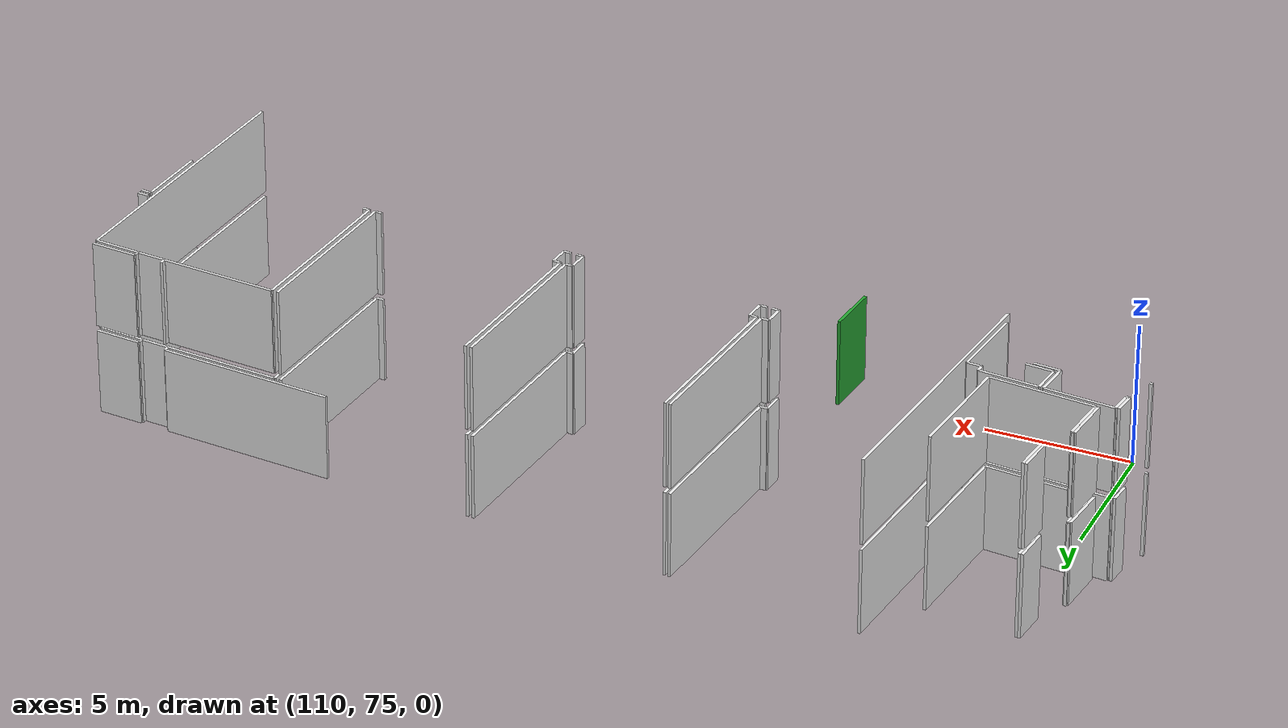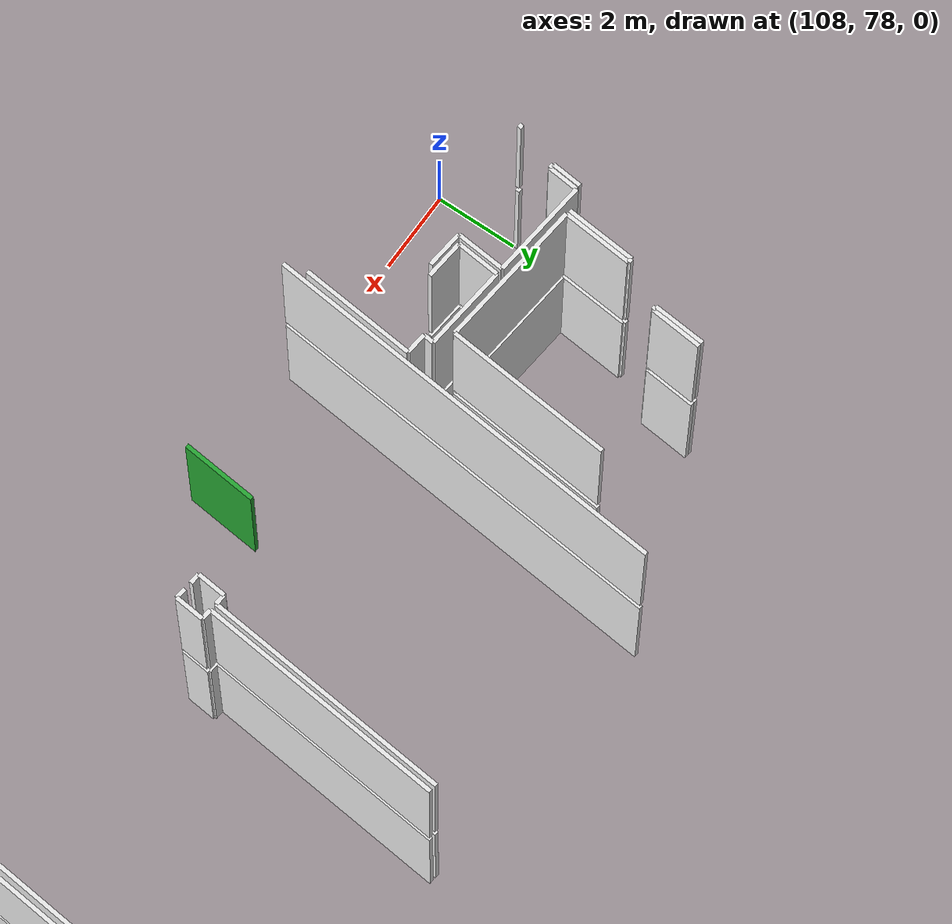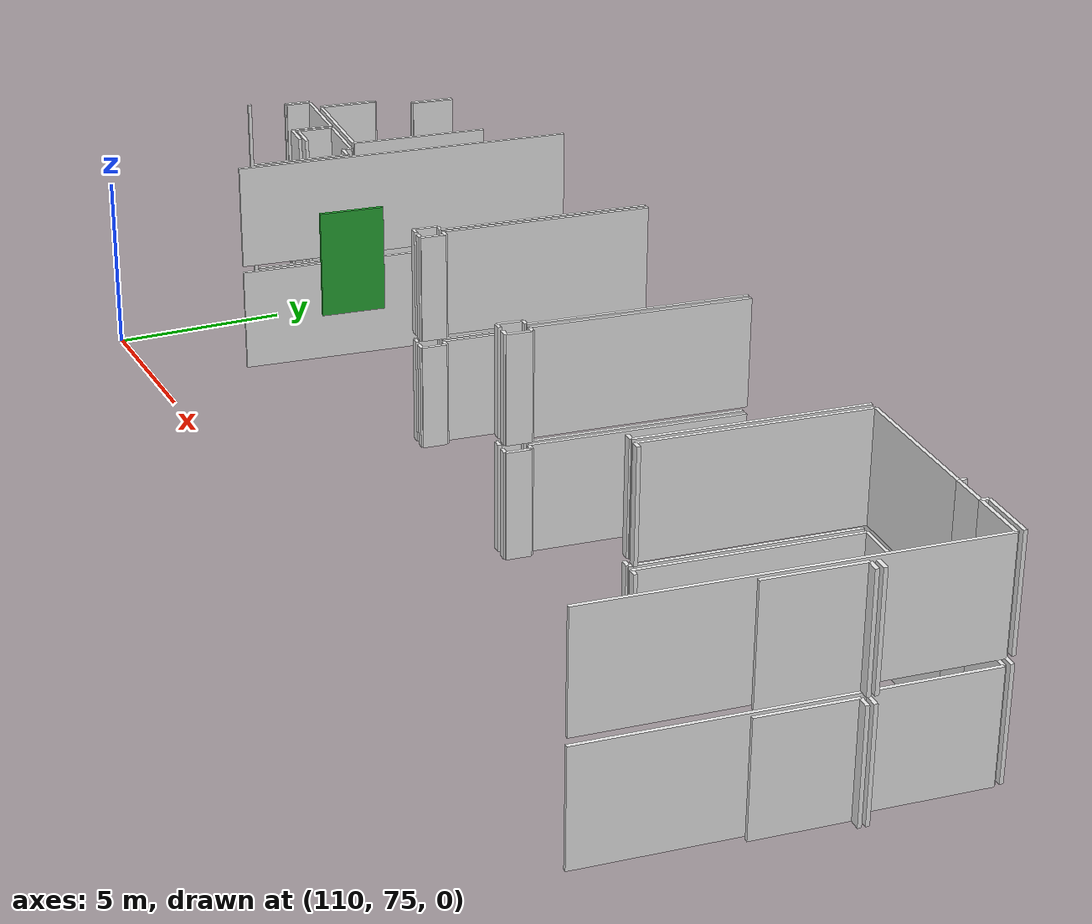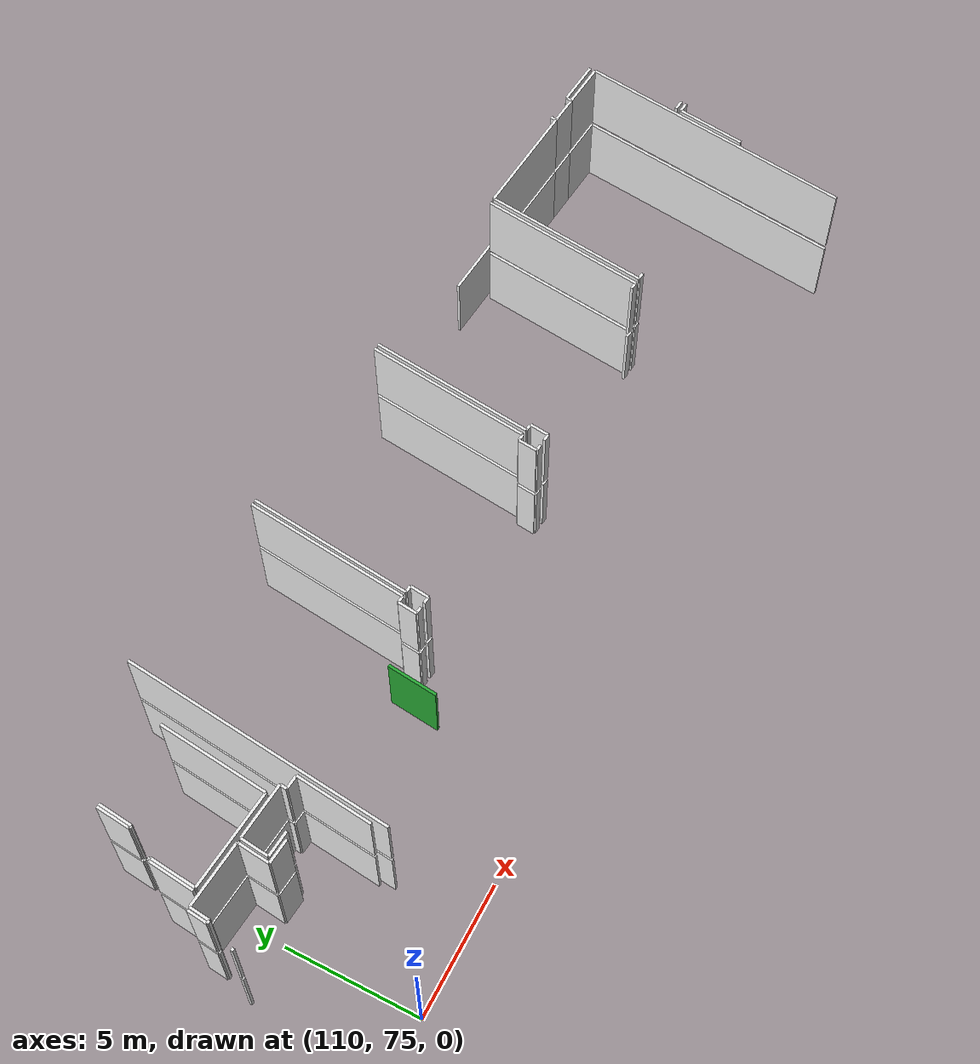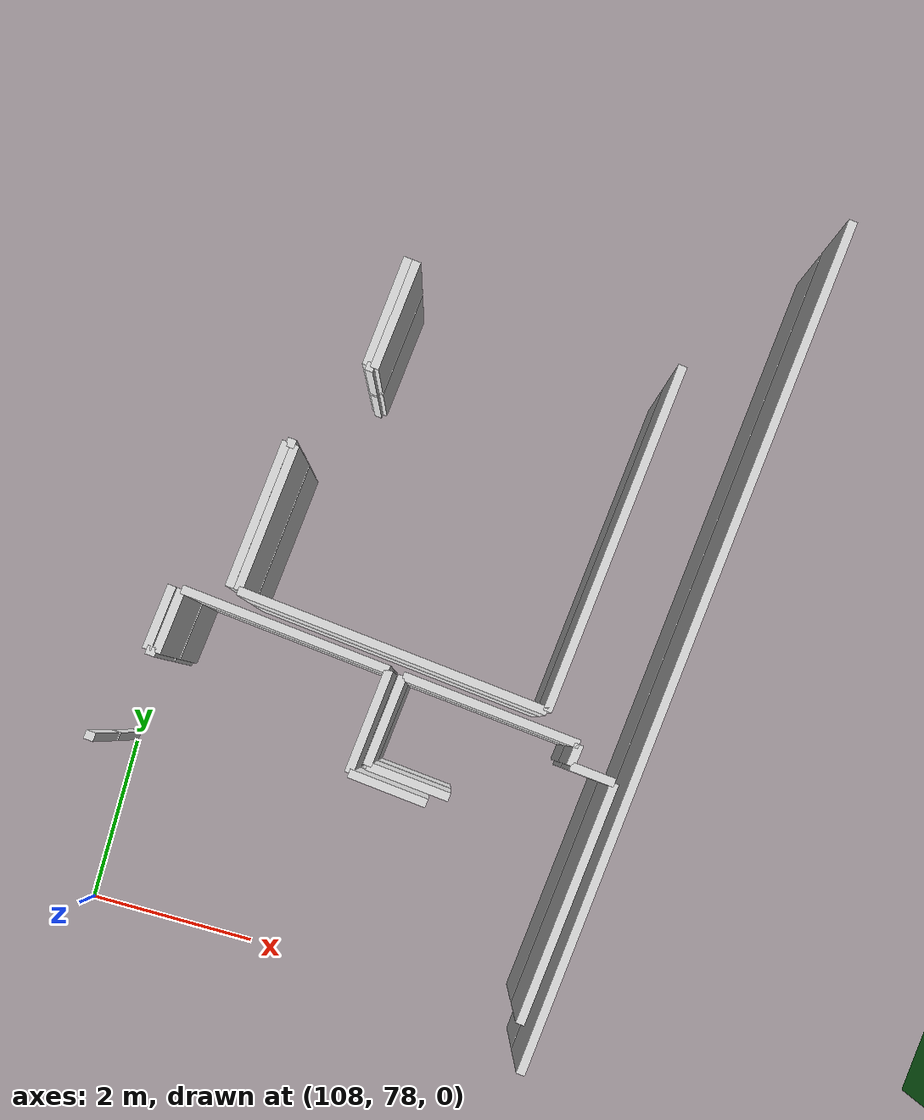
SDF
<sdf version="1.6">
 <world name="default">
  <model name="wall_134.6_79.7_0.0">
   <static>true</static>
   <pose>134.60999999998603 79.67999999993481 1.5 0 0 3.0584514216210654</pose>
   <link name="link">
    <visual name="visual">
     <geometry><box><size>0.2408318915681117 0.1 3</size></box></geometry>
     <material>
      <script><uri>file://media/materials/scripts/gazebo.material</uri><name>Gazebo/White</name></script>
     </material>
    </visual>
   </link>
  </model>
  <model name="wall_134.8_82.6_0.0">
   <static>true</static>
   <pose>134.79000000000815 82.63500000000931 1.5 0 0 1.4692789369105257</pose>
   <link name="link">
    <visual name="visual">
     <geometry><box><size>5.920481399479087 0.1 3</size></box></geometry>
     <material>
      <script><uri>file://media/materials/scripts/gazebo.material</uri><name>Gazebo/White</name></script>
     </material>
    </visual>
   </link>
  </model>
  <model name="wall_137.1_85.4_0.0">
   <static>true</static>
   <pose>137.07000000000698 85.38000000012107 1.5 0 0 -0.10066865213548881</pose>
   <link name="link">
    <visual name="visual">
     <geometry><box><size>3.9801507508674154 0.1 3</size></box></geometry>
     <material>
      <script><uri>file://media/materials/scripts/gazebo.material</uri><name>Gazebo/White</name></script>
     </material>
    </visual>
   </link>
  </model>
  <model name="wall_139.5_85.1_0.0">
   <static>true</static>
   <pose>139.54999999998836 85.13000000012107 1.5 0 0 -0.09966865258337218</pose>
   <link name="link">
    <visual name="visual">
     <geometry><box><size>1.004987562121356 0.1 3</size></box></geometry>
     <material>
      <script><uri>file://media/materials/scripts/gazebo.material</uri><name>Gazebo/White</name></script>
     </material>
    </visual>
   </link>
  </model>
  <model name="wall_140.8_85.0_0.0">
   <static>true</static>
   <pose>140.82499999998254 85.0 1.5 0 0 -0.10286148975795871</pose>
   <link name="link">
    <visual name="visual">
     <geometry><box><size>1.5582361823586293 0.1 3</size></box></geometry>
     <material>
      <script><uri>file://media/materials/scripts/gazebo.material</uri><name>Gazebo/White</name></script>
     </material>
    </visual>
   </link>
  </model>
  <model name="wall_141.1_80.0_0.0">
   <static>true</static>
   <pose>141.10499999998137 79.98999999999069 1.5 0 0 -1.670866626016522</pose>
   <link name="link">
    <visual name="visual">
     <geometry><box><size>9.909576176477497 0.1 3</size></box></geometry>
     <material>
      <script><uri>file://media/materials/scripts/gazebo.material</uri><name>Gazebo/White</name></script>
     </material>
    </visual>
   </link>
  </model>
  <model name="wall_134.2_79.7_0.0">
   <static>true</static>
   <pose>134.15500000002794 79.72500000009313 1.5 0 0 -0.11942892704661259</pose>
   <link name="link">
    <visual name="visual">
     <geometry><box><size>0.25179356627135296 0.1 3</size></box></geometry>
     <material>
      <script><uri>file://media/materials/scripts/gazebo.material</uri><name>Gazebo/White</name></script>
     </material>
    </visual>
   </link>
  </model>
  <model name="wall_134.6_82.7_0.0">
   <static>true</static>
   <pose>134.5800000000163 82.65999999991618 1.5 0 0 1.4694498235315459</pose>
   <link name="link">
    <visual name="visual">
     <geometry><box><size>5.9304300011780855 0.1 3</size></box></geometry>
     <material>
      <script><uri>file://media/materials/scripts/gazebo.material</uri><name>Gazebo/White</name></script>
     </material>
    </visual>
   </link>
  </model>
  <model name="wall_127.8_83.3_0.0">
   <static>true</static>
   <pose>127.79999999998836 83.34499999997206 1.5 0 0 -1.6719725158339418</pose>
   <link name="link">
    <visual name="visual">
     <geometry><box><size>5.940378775484714 0.1 3</size></box></geometry>
     <material>
      <script><uri>file://media/materials/scripts/gazebo.material</uri><name>Gazebo/White</name></script>
     </material>
    </visual>
   </link>
  </model>
  <model name="wall_127.6_80.4_0.0">
   <static>true</static>
   <pose>127.625 80.375 1.5 0 0 -0.11942892704661259</pose>
   <link name="link">
    <visual name="visual">
     <geometry><box><size>0.25179356627135296 0.1 3</size></box></geometry>
     <material>
      <script><uri>file://media/materials/scripts/gazebo.material</uri><name>Gazebo/White</name></script>
     </material>
    </visual>
   </link>
  </model>
  <model name="wall_127.7_80.0_0.0">
   <static>true</static>
   <pose>127.71499999999651 80.01499999989755 1.5 0 0 -1.6718996985493473</pose>
   <link name="link">
    <visual name="visual">
     <geometry><box><size>0.693541635321099 0.1 3</size></box></geometry>
     <material>
      <script><uri>file://media/materials/scripts/gazebo.material</uri><name>Gazebo/White</name></script>
     </material>
    </visual>
   </link>
  </model>
  <model name="wall_127.6_79.7_0.0">
   <static>true</static>
   <pose>127.55499999999302 79.68500000005588 1.5 0 0 3.0221637265431807</pose>
   <link name="link">
    <visual name="visual">
     <geometry><box><size>0.25179356627135296 0.1 3</size></box></geometry>
     <material>
      <script><uri>file://media/materials/scripts/gazebo.material</uri><name>Gazebo/White</name></script>
     </material>
    </visual>
   </link>
  </model>
  <model name="wall_113.4_79.7_0.0">
   <static>true</static>
   <pose>113.40499999999884 79.70999999996275 1.5 0 0 1.4668557173961834</pose>
   <link name="link">
    <visual name="visual">
     <geometry><box><size>2.7950849721319257 0.1 3</size></box></geometry>
     <material>
      <script><uri>file://media/materials/scripts/gazebo.material</uri><name>Gazebo/White</name></script>
     </material>
    </visual>
   </link>
  </model>
  <model name="wall_113.3_81.1_0.0">
   <static>true</static>
   <pose>113.2949999999837 81.125 1.5 0 0 3.0438657465945953</pose>
   <link name="link">
    <visual name="visual">
     <geometry><box><size>0.512445119003853 0.1 3</size></box></geometry>
     <material>
      <script><uri>file://media/materials/scripts/gazebo.material</uri><name>Gazebo/White</name></script>
     </material>
    </visual>
   </link>
  </model>
  <model name="wall_113.1_81.3_0.0">
   <static>true</static>
   <pose>113.05499999999302 81.27499999990687 1.5 0 0 1.451367400666386</pose>
   <link name="link">
    <visual name="visual">
     <geometry><box><size>0.2517935662436123 0.1 3</size></box></geometry>
     <material>
      <script><uri>file://media/materials/scripts/gazebo.material</uri><name>Gazebo/White</name></script>
     </material>
    </visual>
   </link>
  </model>
  <model name="wall_112.1_81.5_0.0">
   <static>true</static>
   <pose>112.05000000001746 81.5 1.5 0 0 3.04386574613964</pose>
   <link name="link">
    <visual name="visual">
     <geometry><box><size>2.0497804760483525 0.1 3</size></box></geometry>
     <material>
      <script><uri>file://media/materials/scripts/gazebo.material</uri><name>Gazebo/White</name></script>
     </material>
    </visual>
   </link>
  </model>
  <model name="wall_111.0_81.1_0.0">
   <static>true</static>
   <pose>110.97500000000582 81.0800000000745 1.5 0 0 -1.676173766022158</pose>
   <link name="link">
    <visual name="visual">
     <geometry><box><size>1.0458011283639057 0.1 3</size></box></geometry>
     <material>
      <script><uri>file://media/materials/scripts/gazebo.material</uri><name>Gazebo/White</name></script>
     </material>
    </visual>
   </link>
  </model>
  <model name="wall_111.4_80.5_0.0">
   <static>true</static>
   <pose>111.39499999998952 80.51500000013039 1.5 0 0 -0.09445493523843698</pose>
   <link name="link">
    <visual name="visual">
     <geometry><box><size>0.9542536350443193 0.1 3</size></box></geometry>
     <material>
      <script><uri>file://media/materials/scripts/gazebo.material</uri><name>Gazebo/White</name></script>
     </material>
    </visual>
   </link>
  </model>
  <model name="wall_109.7_81.7_0.0">
   <static>true</static>
   <pose>109.6699999999837 81.73999999999069 1.5 0 0 3.041924001199486</pose>
   <link name="link">
    <visual name="visual">
     <geometry><box><size>2.411970149068087 0.1 3</size></box></geometry>
     <material>
      <script><uri>file://media/materials/scripts/gazebo.material</uri><name>Gazebo/White</name></script>
     </material>
    </visual>
   </link>
  </model>
  <model name="wall_108.4_81.5_0.0">
   <static>true</static>
   <pose>108.42999999999302 81.48999999999069 1.5 0 0 -1.6784861976067038</pose>
   <link name="link">
    <visual name="visual">
     <geometry><box><size>0.7443117623918901 0.1 3</size></box></geometry>
     <material>
      <script><uri>file://media/materials/scripts/gazebo.material</uri><name>Gazebo/White</name></script>
     </material>
    </visual>
   </link>
  </model>
  <model name="wall_108.3_81.1_0.0">
   <static>true</static>
   <pose>108.33500000002095 81.125 1.5 0 0 3.0509327683929186</pose>
   <link name="link">
    <visual name="visual">
     <geometry><box><size>0.11045361013772383 0.1 3</size></box></geometry>
     <material>
      <script><uri>file://media/materials/scripts/gazebo.material</uri><name>Gazebo/White</name></script>
     </material>
    </visual>
   </link>
  </model>
  <model name="wall_108.3_81.5_0.0">
   <static>true</static>
   <pose>108.32000000000698 81.5 1.5 0 0 1.463106456050333</pose>
   <link name="link">
    <visual name="visual">
     <geometry><box><size>0.7443117628548539 0.1 3</size></box></geometry>
     <material>
      <script><uri>file://media/materials/scripts/gazebo.material</uri><name>Gazebo/White</name></script>
     </material>
    </visual>
   </link>
  </model>
  <model name="wall_107.9_80.1_0.0">
   <static>true</static>
   <pose>107.94500000000698 80.06499999994412 1.5 0 0 -0.09065988519687482</pose>
   <link name="link">
    <visual name="visual">
     <geometry><box><size>0.11045361013772383 0.1 3</size></box></geometry>
     <material>
      <script><uri>file://media/materials/scripts/gazebo.material</uri><name>Gazebo/White</name></script>
     </material>
    </visual>
   </link>
  </model>
  <model name="wall_111.2_80.4_0.0">
   <static>true</static>
   <pose>111.20000000001164 80.38500000000931 1.5 0 0 3.041924000752843</pose>
   <link name="link">
    <visual name="visual">
     <geometry><box><size>0.9044888059555555 0.1 3</size></box></geometry>
     <material>
      <script><uri>file://media/materials/scripts/gazebo.material</uri><name>Gazebo/White</name></script>
     </material>
    </visual>
   </link>
  </model>
  <model name="wall_110.8_81.0_0.0">
   <static>true</static>
   <pose>110.80999999999767 81.0250000001397 1.5 0 0 1.470295727739453</pose>
   <link name="link">
    <visual name="visual">
     <geometry><box><size>1.1960351164852516 0.1 3</size></box></geometry>
     <material>
      <script><uri>file://media/materials/scripts/gazebo.material</uri><name>Gazebo/White</name></script>
     </material>
    </visual>
   </link>
  </model>
  <model name="wall_109.8_85.4_0.0">
   <static>true</static>
   <pose>109.79999999998836 85.36500000022352 1.5 0 0 -1.666503034878009</pose>
   <link name="link">
    <visual name="visual">
     <geometry><box><size>1.2557467897625232 0.1 3</size></box></geometry>
     <material>
      <script><uri>file://media/materials/scripts/gazebo.material</uri><name>Gazebo/White</name></script>
     </material>
    </visual>
   </link>
  </model>
  <model name="wall_109.8_84.7_0.0">
   <static>true</static>
   <pose>109.78500000000349 84.73500000010245 1.5 0 0 -0.11065722380033888</pose>
   <link name="link">
    <visual name="visual">
     <geometry><box><size>0.0905538514335692 0.1 3</size></box></geometry>
     <material>
      <script><uri>file://media/materials/scripts/gazebo.material</uri><name>Gazebo/White</name></script>
     </material>
    </visual>
   </link>
  </model>
  <model name="wall_109.9_85.4_0.0">
   <static>true</static>
   <pose>109.89500000001863 85.35499999998137 1.5 0 0 1.4671688667943394</pose>
   <link name="link">
    <visual name="visual">
     <geometry><box><size>1.2567418191503021 0.1 3</size></box></geometry>
     <material>
      <script><uri>file://media/materials/scripts/gazebo.material</uri><name>Gazebo/White</name></script>
     </material>
    </visual>
   </link>
  </model>
  <model name="wall_112.8_83.7_0.0">
   <static>true</static>
   <pose>112.84500000000116 83.65500000002794 1.5 0 0 -1.6726866492791923</pose>
   <link name="link">
    <visual name="visual">
     <geometry><box><size>4.0309056056823005 0.1 3</size></box></geometry>
     <material>
      <script><uri>file://media/materials/scripts/gazebo.material</uri><name>Gazebo/White</name></script>
     </material>
    </visual>
   </link>
  </model>
  <model name="wall_110.9_81.8_0.0">
   <static>true</static>
   <pose>110.85000000000582 81.82999999984168 1.5 0 0 3.041370903846408</pose>
   <link name="link">
    <visual name="visual">
     <geometry><box><size>3.5980550301548777 0.1 3</size></box></geometry>
     <material>
      <script><uri>file://media/materials/scripts/gazebo.material</uri><name>Gazebo/White</name></script>
     </material>
    </visual>
   </link>
  </model>
  <model name="wall_109.1_82.9_0.0">
   <static>true</static>
   <pose>109.14499999998952 82.85499999998137 1.5 0 0 1.470541851323015</pose>
   <link name="link">
    <visual name="visual">
     <geometry><box><size>1.698528775552396 0.1 3</size></box></geometry>
     <material>
      <script><uri>file://media/materials/scripts/gazebo.material</uri><name>Gazebo/White</name></script>
     </material>
    </visual>
   </link>
  </model>
  <model name="wall_109.2_83.7_0.0">
   <static>true</static>
   <pose>109.17999999999302 83.7050000000745 1.5 0 0 3.0419240032886226</pose>
   <link name="link">
    <visual name="visual">
     <geometry><box><size>0.10049875616580058 0.1 3</size></box></geometry>
     <material>
      <script><uri>file://media/materials/scripts/gazebo.material</uri><name>Gazebo/White</name></script>
     </material>
    </visual>
   </link>
  </model>
  <model name="wall_109.0_82.9_0.0">
   <static>true</static>
   <pose>109.0450000000128 82.86499999999069 1.5 0 0 -1.6710508022942177</pose>
   <link name="link">
    <visual name="visual">
     <geometry><box><size>1.698528775089073 0.1 3</size></box></geometry>
     <material>
      <script><uri>file://media/materials/scripts/gazebo.material</uri><name>Gazebo/White</name></script>
     </material>
    </visual>
   </link>
  </model>
  <model name="wall_127.1_79.7_0.0">
   <static>true</static>
   <pose>127.10999999998603 79.7300000002142 1.5 0 0 3.0584514216210654</pose>
   <link name="link">
    <visual name="visual">
     <geometry><box><size>0.2408318915681117 0.1 3</size></box></geometry>
     <material>
      <script><uri>file://media/materials/scripts/gazebo.material</uri><name>Gazebo/White</name></script>
     </material>
    </visual>
   </link>
  </model>
  <model name="wall_127.0_80.1_0.0">
   <static>true</static>
   <pose>127.02499999999418 80.08500000019558 1.5 0 0 1.469692955040446</pose>
   <link name="link">
    <visual name="visual">
     <geometry><box><size>0.693541635321099 0.1 3</size></box></geometry>
     <material>
      <script><uri>file://media/materials/scripts/gazebo.material</uri><name>Gazebo/White</name></script>
     </material>
    </visual>
   </link>
  </model>
  <model name="wall_127.2_80.4_0.0">
   <static>true</static>
   <pose>127.17999999999302 80.42000000015832 1.5 0 0 -0.08314123196872766</pose>
   <link name="link">
    <visual name="visual">
     <geometry><box><size>0.2408318915681117 0.1 3</size></box></geometry>
     <material>
      <script><uri>file://media/materials/scripts/gazebo.material</uri><name>Gazebo/White</name></script>
     </material>
    </visual>
   </link>
  </model>
  <model name="wall_127.6_83.4_0.0">
   <static>true</static>
   <pose>127.60000000000582 83.36499999999069 1.5 0 0 1.469620137746103</pose>
   <link name="link">
    <visual name="visual">
     <geometry><box><size>5.940378775490593 0.1 3</size></box></geometry>
     <material>
      <script><uri>file://media/materials/scripts/gazebo.material</uri><name>Gazebo/White</name></script>
     </material>
    </visual>
   </link>
  </model>
  <model name="wall_120.8_84.0_0.0">
   <static>true</static>
   <pose>120.82000000000698 84.0449999999255 1.5 0 0 -1.6719725158260241</pose>
   <link name="link">
    <visual name="visual">
     <geometry><box><size>5.940378775947993 0.1 3</size></box></geometry>
     <material>
      <script><uri>file://media/materials/scripts/gazebo.material</uri><name>Gazebo/White</name></script>
     </material>
    </visual>
   </link>
  </model>
  <model name="wall_120.6_81.1_0.0">
   <static>true</static>
   <pose>120.64500000001863 81.07999999984168 1.5 0 0 -0.07982998578626932</pose>
   <link name="link">
    <visual name="visual">
     <geometry><box><size>0.25079872408117443 0.1 3</size></box></geometry>
     <material>
      <script><uri>file://media/materials/scripts/gazebo.material</uri><name>Gazebo/White</name></script>
     </material>
    </visual>
   </link>
  </model>
  <model name="wall_120.7_80.7_0.0">
   <static>true</static>
   <pose>120.73500000001513 80.71999999997206 1.5 0 0 -1.670464979335457</pose>
   <link name="link">
    <visual name="visual">
     <geometry><box><size>0.7034912932011471 0.1 3</size></box></geometry>
     <material>
      <script><uri>file://media/materials/scripts/gazebo.material</uri><name>Gazebo/White</name></script>
     </material>
    </visual>
   </link>
  </model>
  <model name="wall_120.6_80.4_0.0">
   <static>true</static>
   <pose>120.57500000001164 80.38500000000931 1.5 0 0 3.0221637283793843</pose>
   <link name="link">
    <visual name="visual">
     <geometry><box><size>0.2517935662158716 0.1 3</size></box></geometry>
     <material>
      <script><uri>file://media/materials/scripts/gazebo.material</uri><name>Gazebo/White</name></script>
     </material>
    </visual>
   </link>
  </model>
  <model name="wall_120.2_80.4_0.0">
   <static>true</static>
   <pose>120.15500000002794 80.42999999993481 1.5 0 0 3.061762667803524</pose>
   <link name="link">
    <visual name="visual">
     <geometry><box><size>0.25079872408117443 0.1 3</size></box></geometry>
     <material>
      <script><uri>file://media/materials/scripts/gazebo.material</uri><name>Gazebo/White</name></script>
     </material>
    </visual>
   </link>
  </model>
  <model name="wall_120.1_80.8_0.0">
   <static>true</static>
   <pose>120.06500000000233 80.78499999991618 1.5 0 0 1.4696929551239455</pose>
   <link name="link">
    <visual name="visual">
     <geometry><box><size>0.6935416353152241 0.1 3</size></box></geometry>
     <material>
      <script><uri>file://media/materials/scripts/gazebo.material</uri><name>Gazebo/White</name></script>
     </material>
    </visual>
   </link>
  </model>
  <model name="wall_120.2_81.1_0.0">
   <static>true</static>
   <pose>120.22499999997672 81.11999999987893 1.5 0 0 -0.07982998578626932</pose>
   <link name="link">
    <visual name="visual">
     <geometry><box><size>0.25079872408117443 0.1 3</size></box></geometry>
     <material>
      <script><uri>file://media/materials/scripts/gazebo.material</uri><name>Gazebo/White</name></script>
     </material>
    </visual>
   </link>
  </model>
  <model name="wall_120.6_84.1_0.0">
   <static>true</static>
   <pose>120.64999999999418 84.06499999994412 1.5 0 0 1.4696201377540206</pose>
   <link name="link">
    <visual name="visual">
     <geometry><box><size>5.940378775953872 0.1 3</size></box></geometry>
     <material>
      <script><uri>file://media/materials/scripts/gazebo.material</uri><name>Gazebo/White</name></script>
     </material>
    </visual>
   </link>
  </model>
  <model name="wall_113.9_82.7_0.0">
   <static>true</static>
   <pose>113.90999999997439 82.73999999999069 1.5 0 0 -1.6716673835126197</pose>
   <link name="link">
    <visual name="visual">
     <geometry><box><size>9.93047833727022 0.1 3</size></box></geometry>
     <material>
      <script><uri>file://media/materials/scripts/gazebo.material</uri><name>Gazebo/White</name></script>
     </material>
    </visual>
   </link>
  </model>
  <model name="wall_141.6_81.4_0.0">
   <static>true</static>
   <pose>141.63000000000466 81.43000000016764 1.5 0 0 3.0244839089037323</pose>
   <link name="link">
    <visual name="visual">
     <geometry><box><size>0.3423448553444534 0.1 3</size></box></geometry>
     <material>
      <script><uri>file://media/materials/scripts/gazebo.material</uri><name>Gazebo/White</name></script>
     </material>
    </visual>
   </link>
  </model>
  <model name="wall_141.3_80.2_0.0">
   <static>true</static>
   <pose>141.33500000002095 80.22500000009313 1.5 0 0 -1.6724851785502959</pose>
   <link name="link">
    <visual name="visual">
     <geometry><box><size>2.4627220713902527 0.1 3</size></box></geometry>
     <material>
      <script><uri>file://media/materials/scripts/gazebo.material</uri><name>Gazebo/White</name></script>
     </material>
    </visual>
   </link>
  </model>
  <model name="wall_141.6_81.6_0.0">
   <static>true</static>
   <pose>141.64000000001397 81.62000000011176 1.5 0 0 -0.11065722128037307</pose>
   <link name="link">
    <visual name="visual">
     <geometry><box><size>0.3622154055157262 0.1 3</size></box></geometry>
     <material>
      <script><uri>file://media/materials/scripts/gazebo.material</uri><name>Gazebo/White</name></script>
     </material>
    </visual>
   </link>
  </model>
  <model name="wall_136.1_85.7_0.0">
   <static>true</static>
   <pose>136.08499999999185 85.67999999993481 1.5 0 0 -0.1001661649028647</pose>
   <link name="link">
    <visual name="visual">
     <geometry><box><size>6.0000749995706855 0.1 3</size></box></geometry>
     <material>
      <script><uri>file://media/materials/scripts/gazebo.material</uri><name>Gazebo/White</name></script>
     </material>
    </visual>
   </link>
  </model>
  <model name="wall_139.1_85.3_0.0">
   <static>true</static>
   <pose>139.05999999999767 85.28000000002794 1.5 0 0 -1.670464979516584</pose>
   <link name="link">
    <visual name="visual">
     <geometry><box><size>0.20099751214626105 0.1 3</size></box></geometry>
     <material>
      <script><uri>file://media/materials/scripts/gazebo.material</uri><name>Gazebo/White</name></script>
     </material>
    </visual>
   </link>
  </model>
  <model name="wall_140.1_85.2_0.0">
   <static>true</static>
   <pose>140.05999999999767 85.17999999993481 1.5 0 0 1.471127674073209</pose>
   <link name="link">
    <visual name="visual">
     <geometry><box><size>0.20099751214626105 0.1 3</size></box></geometry>
     <material>
      <script><uri>file://media/materials/scripts/gazebo.material</uri><name>Gazebo/White</name></script>
     </material>
    </visual>
   </link>
  </model>
  <model name="wall_140.8_85.2_0.0">
   <static>true</static>
   <pose>140.84500000000116 85.19999999995343 1.5 0 0 -0.10286148946069955</pose>
   <link name="link">
    <visual name="visual">
     <geometry><box><size>1.558236182310815 0.1 3</size></box></geometry>
     <material>
      <script><uri>file://media/materials/scripts/gazebo.material</uri><name>Gazebo/White</name></script>
     </material>
    </visual>
   </link>
  </model>
  <model name="wall_118.0_79.5_3.2">
   <static>true</static>
   <pose>117.96999999985565 79.46499999985099 4.7 0 0 1.470574577181901</pose>
   <link name="link">
    <visual name="visual">
     <geometry><box><size>1.799027515083101 0.1 3</size></box></geometry>
     <material>
      <script><uri>file://media/materials/scripts/gazebo.material</uri><name>Gazebo/Green</name></script>
     </material>
    </visual>
   </link>
  </model>
  <model name="wall_134.6_79.7_3.2">
   <static>true</static>
   <pose>134.60999999998603 79.67999999993481 4.7 0 0 3.0584514216210654</pose>
   <link name="link">
    <visual name="visual">
     <geometry><box><size>0.2408318915681117 0.1 3</size></box></geometry>
     <material>
      <script><uri>file://media/materials/scripts/gazebo.material</uri><name>Gazebo/White</name></script>
     </material>
    </visual>
   </link>
  </model>
  <model name="wall_134.8_82.6_3.2">
   <static>true</static>
   <pose>134.79000000000815 82.63500000000931 4.7 0 0 1.4692789369105257</pose>
   <link name="link">
    <visual name="visual">
     <geometry><box><size>5.920481399479087 0.1 3</size></box></geometry>
     <material>
      <script><uri>file://media/materials/scripts/gazebo.material</uri><name>Gazebo/White</name></script>
     </material>
    </visual>
   </link>
  </model>
  <model name="wall_137.1_85.4_3.2">
   <static>true</static>
   <pose>137.07000000000698 85.38000000012107 4.7 0 0 -0.10066865213548881</pose>
   <link name="link">
    <visual name="visual">
     <geometry><box><size>3.9801507508674154 0.1 3</size></box></geometry>
     <material>
      <script><uri>file://media/materials/scripts/gazebo.material</uri><name>Gazebo/White</name></script>
     </material>
    </visual>
   </link>
  </model>
  <model name="wall_139.5_85.1_3.2">
   <static>true</static>
   <pose>139.54999999998836 85.13000000012107 4.7 0 0 -0.09966865258337218</pose>
   <link name="link">
    <visual name="visual">
     <geometry><box><size>1.004987562121356 0.1 3</size></box></geometry>
     <material>
      <script><uri>file://media/materials/scripts/gazebo.material</uri><name>Gazebo/White</name></script>
     </material>
    </visual>
   </link>
  </model>
  <model name="wall_140.8_85.0_3.2">
   <static>true</static>
   <pose>140.82499999998254 85.0 4.7 0 0 -0.10286148975795871</pose>
   <link name="link">
    <visual name="visual">
     <geometry><box><size>1.5582361823586293 0.1 3</size></box></geometry>
     <material>
      <script><uri>file://media/materials/scripts/gazebo.material</uri><name>Gazebo/White</name></script>
     </material>
    </visual>
   </link>
  </model>
  <model name="wall_141.1_80.0_3.2">
   <static>true</static>
   <pose>141.10499999998137 79.98999999999069 4.7 0 0 -1.670866626016522</pose>
   <link name="link">
    <visual name="visual">
     <geometry><box><size>9.909576176477497 0.1 3</size></box></geometry>
     <material>
      <script><uri>file://media/materials/scripts/gazebo.material</uri><name>Gazebo/White</name></script>
     </material>
    </visual>
   </link>
  </model>
  <model name="wall_134.2_79.7_3.2">
   <static>true</static>
   <pose>134.15500000002794 79.72500000009313 4.7 0 0 -0.11942892704661259</pose>
   <link name="link">
    <visual name="visual">
     <geometry><box><size>0.25179356627135296 0.1 3</size></box></geometry>
     <material>
      <script><uri>file://media/materials/scripts/gazebo.material</uri><name>Gazebo/White</name></script>
     </material>
    </visual>
   </link>
  </model>
  <model name="wall_134.6_82.7_3.2">
   <static>true</static>
   <pose>134.5800000000163 82.65999999991618 4.7 0 0 1.4694498235315459</pose>
   <link name="link">
    <visual name="visual">
     <geometry><box><size>5.9304300011780855 0.1 3</size></box></geometry>
     <material>
      <script><uri>file://media/materials/scripts/gazebo.material</uri><name>Gazebo/White</name></script>
     </material>
    </visual>
   </link>
  </model>
  <model name="wall_127.8_83.3_3.2">
   <static>true</static>
   <pose>127.79999999998836 83.34499999997206 4.7 0 0 -1.6719725158339418</pose>
   <link name="link">
    <visual name="visual">
     <geometry><box><size>5.940378775484714 0.1 3</size></box></geometry>
     <material>
      <script><uri>file://media/materials/scripts/gazebo.material</uri><name>Gazebo/White</name></script>
     </material>
    </visual>
   </link>
  </model>
  <model name="wall_127.6_80.4_3.2">
   <static>true</static>
   <pose>127.625 80.375 4.7 0 0 -0.11942892704661259</pose>
   <link name="link">
    <visual name="visual">
     <geometry><box><size>0.25179356627135296 0.1 3</size></box></geometry>
     <material>
      <script><uri>file://media/materials/scripts/gazebo.material</uri><name>Gazebo/White</name></script>
     </material>
    </visual>
   </link>
  </model>
  <model name="wall_127.7_80.0_3.2">
   <static>true</static>
   <pose>127.71499999999651 80.01499999989755 4.7 0 0 -1.6718996985493473</pose>
   <link name="link">
    <visual name="visual">
     <geometry><box><size>0.693541635321099 0.1 3</size></box></geometry>
     <material>
      <script><uri>file://media/materials/scripts/gazebo.material</uri><name>Gazebo/White</name></script>
     </material>
    </visual>
   </link>
  </model>
  <model name="wall_127.6_79.7_3.2">
   <static>true</static>
   <pose>127.55499999999302 79.68500000005588 4.7 0 0 3.0221637265431807</pose>
   <link name="link">
    <visual name="visual">
     <geometry><box><size>0.25179356627135296 0.1 3</size></box></geometry>
     <material>
      <script><uri>file://media/materials/scripts/gazebo.material</uri><name>Gazebo/White</name></script>
     </material>
    </visual>
   </link>
  </model>
  <model name="wall_113.4_79.7_3.2">
   <static>true</static>
   <pose>113.40499999999884 79.70999999996275 4.7 0 0 1.4668557173961834</pose>
   <link name="link">
    <visual name="visual">
     <geometry><box><size>2.7950849721319257 0.1 3</size></box></geometry>
     <material>
      <script><uri>file://media/materials/scripts/gazebo.material</uri><name>Gazebo/White</name></script>
     </material>
    </visual>
   </link>
  </model>
  <model name="wall_113.3_81.1_3.2">
   <static>true</static>
   <pose>113.2949999999837 81.125 4.7 0 0 3.0438657465945953</pose>
   <link name="link">
    <visual name="visual">
     <geometry><box><size>0.512445119003853 0.1 3</size></box></geometry>
     <material>
      <script><uri>file://media/materials/scripts/gazebo.material</uri><name>Gazebo/White</name></script>
     </material>
    </visual>
   </link>
  </model>
  <model name="wall_113.1_81.3_3.2">
   <static>true</static>
   <pose>113.05499999999302 81.27499999990687 4.7 0 0 1.451367400666386</pose>
   <link name="link">
    <visual name="visual">
     <geometry><box><size>0.2517935662436123 0.1 3</size></box></geometry>
     <material>
      <script><uri>file://media/materials/scripts/gazebo.material</uri><name>Gazebo/White</name></script>
     </material>
    </visual>
   </link>
  </model>
  <model name="wall_112.1_81.5_3.2">
   <static>true</static>
   <pose>112.05000000001746 81.5 4.7 0 0 3.04386574613964</pose>
   <link name="link">
    <visual name="visual">
     <geometry><box><size>2.0497804760483525 0.1 3</size></box></geometry>
     <material>
      <script><uri>file://media/materials/scripts/gazebo.material</uri><name>Gazebo/White</name></script>
     </material>
    </visual>
   </link>
  </model>
  <model name="wall_111.0_81.1_3.2">
   <static>true</static>
   <pose>110.97500000000582 81.0800000000745 4.7 0 0 -1.676173766022158</pose>
   <link name="link">
    <visual name="visual">
     <geometry><box><size>1.0458011283639057 0.1 3</size></box></geometry>
     <material>
      <script><uri>file://media/materials/scripts/gazebo.material</uri><name>Gazebo/White</name></script>
     </material>
    </visual>
   </link>
  </model>
  <model name="wall_111.4_80.5_3.2">
   <static>true</static>
   <pose>111.39499999998952 80.51500000013039 4.7 0 0 -0.09445493523843698</pose>
   <link name="link">
    <visual name="visual">
     <geometry><box><size>0.9542536350443193 0.1 3</size></box></geometry>
     <material>
      <script><uri>file://media/materials/scripts/gazebo.material</uri><name>Gazebo/White</name></script>
     </material>
    </visual>
   </link>
  </model>
  <model name="wall_109.7_81.7_3.2">
   <static>true</static>
   <pose>109.6699999999837 81.73999999999069 4.7 0 0 3.041924001199486</pose>
   <link name="link">
    <visual name="visual">
     <geometry><box><size>2.411970149068087 0.1 3</size></box></geometry>
     <material>
      <script><uri>file://media/materials/scripts/gazebo.material</uri><name>Gazebo/White</name></script>
     </material>
    </visual>
   </link>
  </model>
  <model name="wall_108.4_81.5_3.2">
   <static>true</static>
   <pose>108.42999999999302 81.48999999999069 4.7 0 0 -1.6784861976067038</pose>
   <link name="link">
    <visual name="visual">
     <geometry><box><size>0.7443117623918901 0.1 3</size></box></geometry>
     <material>
      <script><uri>file://media/materials/scripts/gazebo.material</uri><name>Gazebo/White</name></script>
     </material>
    </visual>
   </link>
  </model>
  <model name="wall_108.3_81.1_3.2">
   <static>true</static>
   <pose>108.33500000002095 81.125 4.7 0 0 3.0509327683929186</pose>
   <link name="link">
    <visual name="visual">
     <geometry><box><size>0.11045361013772383 0.1 3</size></box></geometry>
     <material>
      <script><uri>file://media/materials/scripts/gazebo.material</uri><name>Gazebo/White</name></script>
     </material>
    </visual>
   </link>
  </model>
  <model name="wall_108.3_81.5_3.2">
   <static>true</static>
   <pose>108.32000000000698 81.5 4.7 0 0 1.463106456050333</pose>
   <link name="link">
    <visual name="visual">
     <geometry><box><size>0.7443117628548539 0.1 3</size></box></geometry>
     <material>
      <script><uri>file://media/materials/scripts/gazebo.material</uri><name>Gazebo/White</name></script>
     </material>
    </visual>
   </link>
  </model>
  <model name="wall_107.9_80.1_3.2">
   <static>true</static>
   <pose>107.94500000000698 80.06499999994412 4.7 0 0 -0.09065988519687482</pose>
   <link name="link">
    <visual name="visual">
     <geometry><box><size>0.11045361013772383 0.1 3</size></box></geometry>
     <material>
      <script><uri>file://media/materials/scripts/gazebo.material</uri><name>Gazebo/White</name></script>
     </material>
    </visual>
   </link>
  </model>
  <model name="wall_111.2_80.4_3.2">
   <static>true</static>
   <pose>111.20000000001164 80.38500000000931 4.7 0 0 3.041924000752843</pose>
   <link name="link">
    <visual name="visual">
     <geometry><box><size>0.9044888059555555 0.1 3</size></box></geometry>
     <material>
      <script><uri>file://media/materials/scripts/gazebo.material</uri><name>Gazebo/White</name></script>
     </material>
    </visual>
   </link>
  </model>
  <model name="wall_110.8_81.0_3.2">
   <static>true</static>
   <pose>110.80999999999767 81.0250000001397 4.7 0 0 1.470295727739453</pose>
   <link name="link">
    <visual name="visual">
     <geometry><box><size>1.1960351164852516 0.1 3</size></box></geometry>
     <material>
      <script><uri>file://media/materials/scripts/gazebo.material</uri><name>Gazebo/White</name></script>
     </material>
    </visual>
   </link>
  </model>
  <model name="wall_109.8_85.4_3.2">
   <static>true</static>
   <pose>109.79999999998836 85.36500000022352 4.7 0 0 -1.666503034878009</pose>
   <link name="link">
    <visual name="visual">
     <geometry><box><size>1.2557467897625232 0.1 3</size></box></geometry>
     <material>
      <script><uri>file://media/materials/scripts/gazebo.material</uri><name>Gazebo/White</name></script>
     </material>
    </visual>
   </link>
  </model>
  <model name="wall_109.8_84.7_3.2">
   <static>true</static>
   <pose>109.78500000000349 84.73500000010245 4.7 0 0 -0.11065722380033888</pose>
   <link name="link">
    <visual name="visual">
     <geometry><box><size>0.0905538514335692 0.1 3</size></box></geometry>
     <material>
      <script><uri>file://media/materials/scripts/gazebo.material</uri><name>Gazebo/White</name></script>
     </material>
    </visual>
   </link>
  </model>
  <model name="wall_109.9_85.4_3.2">
   <static>true</static>
   <pose>109.89500000001863 85.35499999998137 4.7 0 0 1.4671688667943394</pose>
   <link name="link">
    <visual name="visual">
     <geometry><box><size>1.2567418191503021 0.1 3</size></box></geometry>
     <material>
      <script><uri>file://media/materials/scripts/gazebo.material</uri><name>Gazebo/White</name></script>
     </material>
    </visual>
   </link>
  </model>
  <model name="wall_112.8_83.7_3.2">
   <static>true</static>
   <pose>112.84500000000116 83.65500000002794 4.7 0 0 -1.6726866492791923</pose>
   <link name="link">
    <visual name="visual">
     <geometry><box><size>4.0309056056823005 0.1 3</size></box></geometry>
     <material>
      <script><uri>file://media/materials/scripts/gazebo.material</uri><name>Gazebo/White</name></script>
     </material>
    </visual>
   </link>
  </model>
  <model name="wall_110.9_81.8_3.2">
   <static>true</static>
   <pose>110.85000000000582 81.82999999984168 4.7 0 0 3.041370903846408</pose>
   <link name="link">
    <visual name="visual">
     <geometry><box><size>3.5980550301548777 0.1 3</size></box></geometry>
     <material>
      <script><uri>file://media/materials/scripts/gazebo.material</uri><name>Gazebo/White</name></script>
     </material>
    </visual>
   </link>
  </model>
  <model name="wall_109.1_82.9_3.2">
   <static>true</static>
   <pose>109.14499999998952 82.85499999998137 4.7 0 0 1.470541851323015</pose>
   <link name="link">
    <visual name="visual">
     <geometry><box><size>1.698528775552396 0.1 3</size></box></geometry>
     <material>
      <script><uri>file://media/materials/scripts/gazebo.material</uri><name>Gazebo/White</name></script>
     </material>
    </visual>
   </link>
  </model>
  <model name="wall_109.2_83.7_3.2">
   <static>true</static>
   <pose>109.17999999999302 83.7050000000745 4.7 0 0 3.0419240032886226</pose>
   <link name="link">
    <visual name="visual">
     <geometry><box><size>0.10049875616580058 0.1 3</size></box></geometry>
     <material>
      <script><uri>file://media/materials/scripts/gazebo.material</uri><name>Gazebo/White</name></script>
     </material>
    </visual>
   </link>
  </model>
  <model name="wall_109.0_82.9_3.2">
   <static>true</static>
   <pose>109.0450000000128 82.86499999999069 4.7 0 0 -1.6710508022942177</pose>
   <link name="link">
    <visual name="visual">
     <geometry><box><size>1.698528775089073 0.1 3</size></box></geometry>
     <material>
      <script><uri>file://media/materials/scripts/gazebo.material</uri><name>Gazebo/White</name></script>
     </material>
    </visual>
   </link>
  </model>
  <model name="wall_127.1_79.7_3.2">
   <static>true</static>
   <pose>127.10999999998603 79.7300000002142 4.7 0 0 3.0584514216210654</pose>
   <link name="link">
    <visual name="visual">
     <geometry><box><size>0.2408318915681117 0.1 3</size></box></geometry>
     <material>
      <script><uri>file://media/materials/scripts/gazebo.material</uri><name>Gazebo/White</name></script>
     </material>
    </visual>
   </link>
  </model>
  <model name="wall_127.0_80.1_3.2">
   <static>true</static>
   <pose>127.02499999999418 80.08500000019558 4.7 0 0 1.469692955040446</pose>
   <link name="link">
    <visual name="visual">
     <geometry><box><size>0.693541635321099 0.1 3</size></box></geometry>
     <material>
      <script><uri>file://media/materials/scripts/gazebo.material</uri><name>Gazebo/White</name></script>
     </material>
    </visual>
   </link>
  </model>
  <model name="wall_127.2_80.4_3.2">
   <static>true</static>
   <pose>127.17999999999302 80.42000000015832 4.7 0 0 -0.08314123196872766</pose>
   <link name="link">
    <visual name="visual">
     <geometry><box><size>0.2408318915681117 0.1 3</size></box></geometry>
     <material>
      <script><uri>file://media/materials/scripts/gazebo.material</uri><name>Gazebo/White</name></script>
     </material>
    </visual>
   </link>
  </model>
  <model name="wall_127.6_83.4_3.2">
   <static>true</static>
   <pose>127.60000000000582 83.36499999999069 4.7 0 0 1.469620137746103</pose>
   <link name="link">
    <visual name="visual">
     <geometry><box><size>5.940378775490593 0.1 3</size></box></geometry>
     <material>
      <script><uri>file://media/materials/scripts/gazebo.material</uri><name>Gazebo/White</name></script>
     </material>
    </visual>
   </link>
  </model>
  <model name="wall_120.8_84.0_3.2">
   <static>true</static>
   <pose>120.82000000000698 84.0449999999255 4.7 0 0 -1.6719725158260241</pose>
   <link name="link">
    <visual name="visual">
     <geometry><box><size>5.940378775947993 0.1 3</size></box></geometry>
     <material>
      <script><uri>file://media/materials/scripts/gazebo.material</uri><name>Gazebo/White</name></script>
     </material>
    </visual>
   </link>
  </model>
  <model name="wall_120.6_81.1_3.2">
   <static>true</static>
   <pose>120.64500000001863 81.07999999984168 4.7 0 0 -0.07982998578626932</pose>
   <link name="link">
    <visual name="visual">
     <geometry><box><size>0.25079872408117443 0.1 3</size></box></geometry>
     <material>
      <script><uri>file://media/materials/scripts/gazebo.material</uri><name>Gazebo/White</name></script>
     </material>
    </visual>
   </link>
  </model>
  <model name="wall_120.7_80.7_3.2">
   <static>true</static>
   <pose>120.73500000001513 80.71999999997206 4.7 0 0 -1.670464979335457</pose>
   <link name="link">
    <visual name="visual">
     <geometry><box><size>0.7034912932011471 0.1 3</size></box></geometry>
     <material>
      <script><uri>file://media/materials/scripts/gazebo.material</uri><name>Gazebo/White</name></script>
     </material>
    </visual>
   </link>
  </model>
  <model name="wall_120.6_80.4_3.2">
   <static>true</static>
   <pose>120.57500000001164 80.38500000000931 4.7 0 0 3.0221637283793843</pose>
   <link name="link">
    <visual name="visual">
     <geometry><box><size>0.2517935662158716 0.1 3</size></box></geometry>
     <material>
      <script><uri>file://media/materials/scripts/gazebo.material</uri><name>Gazebo/White</name></script>
     </material>
    </visual>
   </link>
  </model>
  <model name="wall_120.2_80.4_3.2">
   <static>true</static>
   <pose>120.15500000002794 80.42999999993481 4.7 0 0 3.061762667803524</pose>
   <link name="link">
    <visual name="visual">
     <geometry><box><size>0.25079872408117443 0.1 3</size></box></geometry>
     <material>
      <script><uri>file://media/materials/scripts/gazebo.material</uri><name>Gazebo/White</name></script>
     </material>
    </visual>
   </link>
  </model>
  <model name="wall_120.1_80.8_3.2">
   <static>true</static>
   <pose>120.06500000000233 80.78499999991618 4.7 0 0 1.4696929551239455</pose>
   <link name="link">
    <visual name="visual">
     <geometry><box><size>0.6935416353152241 0.1 3</size></box></geometry>
     <material>
      <script><uri>file://media/materials/scripts/gazebo.material</uri><name>Gazebo/White</name></script>
     </material>
    </visual>
   </link>
  </model>
  <model name="wall_120.2_81.1_3.2">
   <static>true</static>
   <pose>120.22499999997672 81.11999999987893 4.7 0 0 -0.07982998578626932</pose>
   <link name="link">
    <visual name="visual">
     <geometry><box><size>0.25079872408117443 0.1 3</size></box></geometry>
     <material>
      <script><uri>file://media/materials/scripts/gazebo.material</uri><name>Gazebo/White</name></script>
     </material>
    </visual>
   </link>
  </model>
  <model name="wall_120.6_84.1_3.2">
   <static>true</static>
   <pose>120.64999999999418 84.06499999994412 4.7 0 0 1.4696201377540206</pose>
   <link name="link">
    <visual name="visual">
     <geometry><box><size>5.940378775953872 0.1 3</size></box></geometry>
     <material>
      <script><uri>file://media/materials/scripts/gazebo.material</uri><name>Gazebo/White</name></script>
     </material>
    </visual>
   </link>
  </model>
  <model name="wall_113.9_82.7_3.2">
   <static>true</static>
   <pose>113.90999999997439 82.73999999999069 4.7 0 0 -1.6716673835126197</pose>
   <link name="link">
    <visual name="visual">
     <geometry><box><size>9.93047833727022 0.1 3</size></box></geometry>
     <material>
      <script><uri>file://media/materials/scripts/gazebo.material</uri><name>Gazebo/White</name></script>
     </material>
    </visual>
   </link>
  </model>
  <model name="wall_141.6_81.4_3.2">
   <static>true</static>
   <pose>141.63000000000466 81.43000000016764 4.7 0 0 3.0244839089037323</pose>
   <link name="link">
    <visual name="visual">
     <geometry><box><size>0.3423448553444534 0.1 3</size></box></geometry>
     <material>
      <script><uri>file://media/materials/scripts/gazebo.material</uri><name>Gazebo/White</name></script>
     </material>
    </visual>
   </link>
  </model>
  <model name="wall_141.3_80.2_3.2">
   <static>true</static>
   <pose>141.33500000002095 80.22500000009313 4.7 0 0 -1.6724851785502959</pose>
   <link name="link">
    <visual name="visual">
     <geometry><box><size>2.4627220713902527 0.1 3</size></box></geometry>
     <material>
      <script><uri>file://media/materials/scripts/gazebo.material</uri><name>Gazebo/White</name></script>
     </material>
    </visual>
   </link>
  </model>
  <model name="wall_141.6_81.6_3.2">
   <static>true</static>
   <pose>141.64000000001397 81.62000000011176 4.7 0 0 -0.11065722128037307</pose>
   <link name="link">
    <visual name="visual">
     <geometry><box><size>0.3622154055157262 0.1 3</size></box></geometry>
     <material>
      <script><uri>file://media/materials/scripts/gazebo.material</uri><name>Gazebo/White</name></script>
     </material>
    </visual>
   </link>
  </model>
  <model name="wall_139.1_85.3_3.2">
   <static>true</static>
   <pose>139.05999999999767 85.28000000002794 4.7 0 0 -1.670464979516584</pose>
   <link name="link">
    <visual name="visual">
     <geometry><box><size>0.20099751214626105 0.1 3</size></box></geometry>
     <material>
      <script><uri>file://media/materials/scripts/gazebo.material</uri><name>Gazebo/White</name></script>
     </material>
    </visual>
   </link>
  </model>
  <model name="wall_140.1_85.2_3.2">
   <static>true</static>
   <pose>140.05999999999767 85.17999999993481 4.7 0 0 1.471127674073209</pose>
   <link name="link">
    <visual name="visual">
     <geometry><box><size>0.20099751214626105 0.1 3</size></box></geometry>
     <material>
      <script><uri>file://media/materials/scripts/gazebo.material</uri><name>Gazebo/White</name></script>
     </material>
    </visual>
   </link>
  </model>
  <model name="wall_140.8_85.2_3.2">
   <static>true</static>
   <pose>140.84500000000116 85.19999999995343 4.7 0 0 -0.10286148946069955</pose>
   <link name="link">
    <visual name="visual">
     <geometry><box><size>1.558236182310815 0.1 3</size></box></geometry>
     <material>
      <script><uri>file://media/materials/scripts/gazebo.material</uri><name>Gazebo/White</name></script>
     </material>
    </visual>
   </link>
  </model>
 </world>
</sdf>
